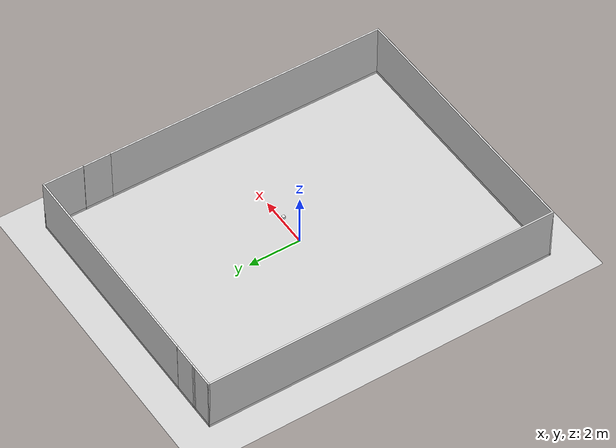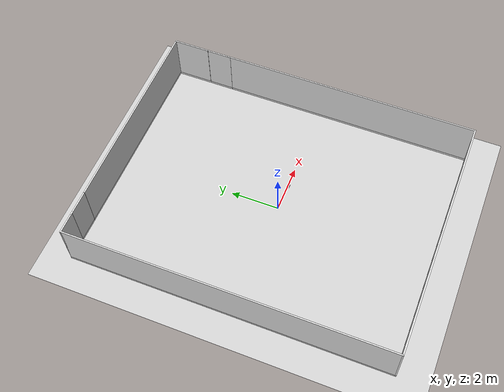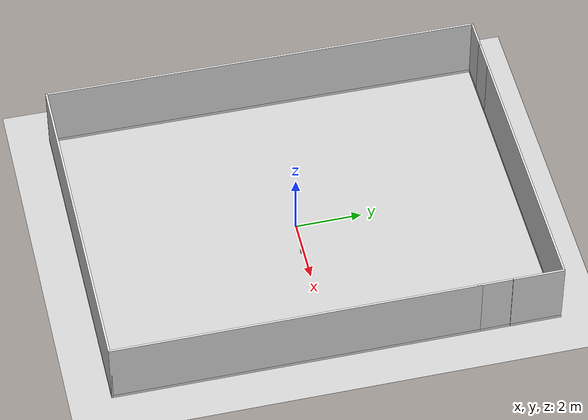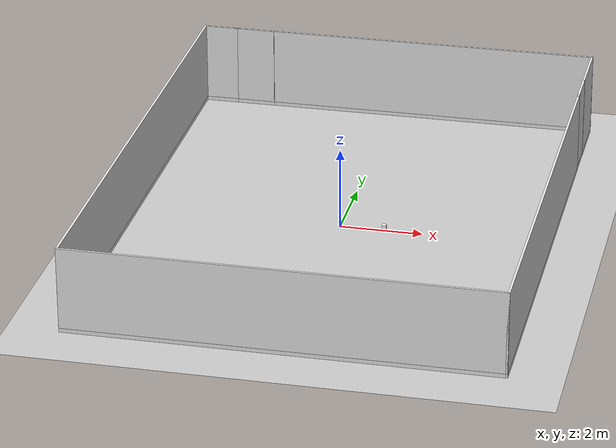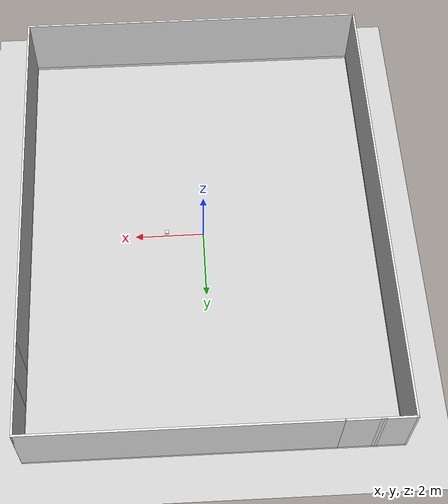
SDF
<sdf version="1.6">
 <world name="megaweb">
  <physics name="default_physics" default="0" type="ode">
   <max_step_size>0.001</max_step_size>
   <real_time_factor>1</real_time_factor>
   <real_time_update_rate>1000</real_time_update_rate>
  </physics>
  <scene><ambient>1 1 1 1</ambient><background>0.7 0.7 0.7 1</background><shadows>1</shadows></scene>
  <model name="ground_plane">
   <static>1</static>
   <link name="link">
    <collision name="collision">
     <geometry><plane><normal>0 0 1</normal><size>100 100</size></plane></geometry>
     <surface><friction><ode><mu>100</mu><mu2>50</mu2></ode></friction></surface>
    </collision>
    <visual name="visual">
     <cast_shadows>0</cast_shadows>
     <geometry><plane><normal>0 0 1</normal><size>100 100</size></plane></geometry>
     <material>
      <script><uri>file://media/materials/scripts/gazebo.material</uri><name>Gazebo/Grey</name></script>
     </material>
    </visual>
   </link>
  </model>
  <light name="floorlight1" type="spot">
   <pose>-3 -3 4 0 -0 0</pose>
   <diffuse>0.8 0.8 0.8 1</diffuse>
   <specular>0.2 0.2 0.2 1</specular>
   <attenuation>
    <range>10</range>
    <constant>0.9</constant>
    <linear>0.2</linear>
    <quadratic>0.001</quadratic>
   </attenuation>
   <spot><inner_angle>0.1</inner_angle><outer_angle>3.14</outer_angle><falloff>0.01</falloff></spot>
   <direction>0 0 -1</direction>
  </light>
  <light name="floorlight2" type="spot">
   <pose>-6 -3 4 0 -0 0</pose>
   <diffuse>0.8 0.8 0.8 1</diffuse>
   <specular>0.2 0.2 0.2 1</specular>
   <attenuation>
    <range>10</range>
    <constant>0.9</constant>
    <linear>0.2</linear>
    <quadratic>0.001</quadratic>
   </attenuation>
   <spot><inner_angle>0.1</inner_angle><outer_angle>3.14</outer_angle><falloff>0.01</falloff></spot>
   <direction>0 0 -1</direction>
  </light>
  <light name="floorlight3" type="spot">
   <pose>-3 -6 4 0 -0 0</pose>
   <diffuse>0.8 0.8 0.8 1</diffuse>
   <specular>0.2 0.2 0.2 1</specular>
   <attenuation>
    <range>10</range>
    <constant>0.9</constant>
    <linear>0.2</linear>
    <quadratic>0.001</quadratic>
   </attenuation>
   <spot><inner_angle>0.1</inner_angle><outer_angle>3.14</outer_angle><falloff>0.01</falloff></spot>
   <direction>0 0 -1</direction>
  </light>
  <light name="floorlight4" type="spot">
   <pose>-6 -6 4 0 -0 0</pose>
   <diffuse>0.8 0.8 0.8 1</diffuse>
   <specular>0.2 0.2 0.2 1</specular>
   <attenuation>
    <range>10</range>
    <constant>0.9</constant>
    <linear>0.2</linear>
    <quadratic>0.001</quadratic>
   </attenuation>
   <spot><inner_angle>0.1</inner_angle><outer_angle>3.14</outer_angle><falloff>0.01</falloff></spot>
   <direction>0 0 -1</direction>
  </light>
  <gravity>0 0 -9.8</gravity>
  <magnetic_field>6e-06 2.3e-05 -4.2e-05</magnetic_field>
  <atmosphere type="adiabatic"/>
  <spherical_coordinates>
   <surface_model>EARTH_WGS84</surface_model>
   <latitude_deg>0</latitude_deg>
   <longitude_deg>0</longitude_deg>
   <elevation>0</elevation>
   <heading_deg>0</heading_deg>
  </spherical_coordinates>
  <model name="full_outside_wall">
   <link name="link">
    <inertial>
     <mass>50</mass>
     <inertia><ixx>1</ixx><ixy>0</ixy><ixz>0</ixz><iyy>1</iyy><iyz>0</iyz><izz>1</izz></inertia>
    </inertial>
    <visual name="x00_13y00_bottom_frame">
     <pose>5.0375 -0.0275 0.05 0 -0 0</pose>
     <geometry><box><size>10.185 0.055 0.1</size></box></geometry>
     <material>
      <script><uri>model://base_materials/color/scripts</uri><name>hsr_color/white</name></script>
     </material>
    </visual>
    <collision name="x00_13y00_collision_bottom_frame">
     <pose>5.0375 -0.0275 0.05 0 -0 0</pose>
     <geometry><box><size>10.185 0.055 0.1</size></box></geometry>
    </collision>
    <visual name="wall_x00_13y00">
     <pose>5.0375 -0.0275 1.095 0 -0 0</pose>
     <geometry><box><size>10.185 0.055 1.99</size></box></geometry>
     <material>
      <script>
       <uri>model://base_materials/wall/scripts</uri>
       <uri>model://base_materials/wall/textures</uri>
       <name>wall/white_noise</name>
      </script>
     </material>
    </visual>
    <collision name="wall_x00_13y00">
     <pose>5.0375 -0.002 1.095 0 -0 0</pose>
     <geometry><box><size>10.08 0.055 1.99</size></box></geometry>
    </collision>
    <visual name="x00y00_15_bottom_frame">
     <pose>-0.0275 6.59 0.05 0 -0 0</pose>
     <geometry><box><size>0.055 13.29 0.1</size></box></geometry>
     <material>
      <script><uri>model://base_materials/color/scripts</uri><name>hsr_color/white</name></script>
     </material>
    </visual>
    <collision name="x00y00_15_collision_bottom_frame">
     <pose>-0.0275 6.59 0.05 0 -0 0</pose>
     <geometry><box><size>0.055 13.29 0.1</size></box></geometry>
    </collision>
    <visual name="wall_x00y00_15">
     <pose>-0.0275 6.59 1.095 0 -0 0</pose>
     <geometry><box><size>0.055 13.29 1.99</size></box></geometry>
     <material>
      <script>
       <uri>model://base_materials/wall/scripts</uri>
       <uri>model://base_materials/wall/textures</uri>
       <name>wall/white_noise</name>
      </script>
     </material>
    </visual>
    <collision name="wall_x00y00_x00y15">
     <pose>-0.002 6.59 1.095 0 -0 0</pose>
     <geometry><box><size>0.002 13.29 1.99</size></box></geometry>
    </collision>
    <visual name="x13y00_12_bottom_frame">
     <pose>10.1025 5.3725 0.05 0 -0 0</pose>
     <geometry><box><size>0.055 10.855 0.1</size></box></geometry>
     <material>
      <script><uri>model://base_materials/color/scripts</uri><name>hsr_color/white</name></script>
     </material>
    </visual>
    <collision name="x13y00_12_collision_bottom_frame">
     <pose>10.1025 5.3725 0.05 0 -0 0</pose>
     <geometry><box><size>0.055 10.855 0.1</size></box></geometry>
    </collision>
    <visual name="wall_x13y00_12">
     <pose>10.1025 5.3725 1.095 0 -0 0</pose>
     <geometry><box><size>0.055 10.855 1.99</size></box></geometry>
     <material>
      <script>
       <uri>model://base_materials/wall/scripts</uri>
       <uri>model://base_materials/wall/textures</uri>
       <name>wall/white_noise</name>
      </script>
     </material>
    </visual>
    <collision name="wall_x13y00_12">
     <pose>10.1025 5.3725 1.095 0 -0 0</pose>
     <geometry><box><size>0.055 10.855 1.99</size></box></geometry>
    </collision>
    <visual name="x13y14_16_bottom_frame">
     <pose>10.1025 12.4675 0.05 0 -0 0</pose>
     <geometry><box><size>0.055 1.535 0.1</size></box></geometry>
     <material>
      <script><uri>model://base_materials/color/scripts</uri><name>hsr_color/white</name></script>
     </material>
    </visual>
    <collision name="x13y14_16_collision_bottom_frame">
     <pose>10.1025 12.4675 0.05 0 -0 0</pose>
     <geometry><box><size>0.055 1.535 0.1</size></box></geometry>
    </collision>
    <visual name="wall_x13y14_x13y16">
     <pose>10.1025 12.4675 1.095 0 -0 0</pose>
     <geometry><box><size>0.055 1.535 1.99</size></box></geometry>
     <material>
      <script>
       <uri>model://base_materials/wall/scripts</uri>
       <uri>model://base_materials/wall/textures</uri>
       <name>wall/white_noise</name>
      </script>
     </material>
    </visual>
    <collision name="wall_x13y14_x13y16">
     <pose>10.1025 12.4675 1.095 0 -0 0</pose>
     <geometry><box><size>0.055 1.535 1.99</size></box></geometry>
    </collision>
    <visual name="x00_01y16_bottom_frame">
     <pose>0.4225 13.2075 0.05 0 -0 0</pose>
     <geometry><box><size>0.955 0.055 0.1</size></box></geometry>
     <material>
      <script><uri>model://base_materials/color/scripts</uri><name>hsr_color/white</name></script>
     </material>
    </visual>
    <collision name="x00_01y16_collision_bottom_frame">
     <pose>0.4225 13.2075 0.05 0 -0 0</pose>
     <geometry><box><size>0.955 0.055 0.1</size></box></geometry>
    </collision>
    <visual name="wall_x00_01y16">
     <pose>0.4225 13.2075 1.095 0 -0 0</pose>
     <geometry><box><size>0.955 0.055 1.99</size></box></geometry>
     <material>
      <script>
       <uri>model://base_materials/wall/scripts</uri>
       <uri>model://base_materials/wall/textures</uri>
       <name>wall/white_noise</name>
      </script>
     </material>
    </visual>
    <collision name="wall_x00_x01y16">
     <pose>0.4225 13.2075 1.095 0 -0 0</pose>
     <geometry><box><size>0.955 0.055 1.99</size></box></geometry>
    </collision>
    <visual name="x03_13y16_bottom_frame">
     <pose>5.965 13.2075 0.05 0 -0 0</pose>
     <geometry><box><size>8.33 0.05 0.1</size></box></geometry>
     <material>
      <script><uri>model://base_materials/color/scripts</uri><name>hsr_color/white</name></script>
     </material>
    </visual>
    <collision name="x03_13y16_collision_bottom_frame">
     <pose>5.965 13.2075 0.05 0 -0 0</pose>
     <geometry><box><size>8.33 0.05 0.1</size></box></geometry>
    </collision>
    <visual name="wall_x03_13y16">
     <pose>5.965 13.2075 1.095 0 -0 0</pose>
     <geometry><box><size>8.33 0.055 1.99</size></box></geometry>
     <material>
      <script>
       <uri>model://base_materials/wall/scripts</uri>
       <uri>model://base_materials/wall/textures</uri>
       <name>wall/white_noise</name>
      </script>
     </material>
    </visual>
    <collision name="wall_x03_13y16">
     <pose>5.965 13.2075 1.095 0 -0 0</pose>
     <geometry><box><size>8.33 0.055 1.99</size></box></geometry>
    </collision>
    <velocity_decay><linear>0</linear><angular>0</angular></velocity_decay>
   </link>
   <static>1</static>
   <pose>-5 -6.5 0 0 -0 0</pose>
  </model>
  <model name="full_wall_55_900_2090">
   <link name="link">
    <inertial>
     <mass>50</mass>
     <inertia><ixx>1</ixx><ixy>0</ixy><ixz>0</ixz><iyy>1</iyy><iyz>0</iyz><izz>1</izz></inertia>
    </inertial>
    <visual name="bottom_frame">
     <pose>0 0 0.05 0 -0 0</pose>
     <geometry><box><size>0.055 1.04 0.1</size></box></geometry>
     <material>
      <script><uri>model://base_materials/color/scripts</uri><name>hsr_color/white</name></script>
     </material>
    </visual>
    <collision name="collision_bottom_frame">
     <pose>0 0 0.05 0 -0 0</pose>
     <geometry><box><size>0.055 1.04 0.1</size></box></geometry>
    </collision>
    <visual name="wall">
     <pose>0 0 1.095 0 -0 0</pose>
     <geometry><box><size>0.055 1.04 1.99</size></box></geometry>
     <material>
      <script>
       <uri>model://base_materials/wall/scripts</uri>
       <uri>model://base_materials/wall/textures</uri>
       <name>wall/white_noise</name>
      </script>
     </material>
    </visual>
    <collision name="collision_wall">
     <pose>0 0 1.095 0 -0 0</pose>
     <geometry><box><size>0.055 1.04 1.99</size></box></geometry>
    </collision>
    <velocity_decay><linear>0</linear><angular>0</angular></velocity_decay>
   </link>
   <static>1</static>
   <pose>5.1 4.67156 0 0 -0 0</pose>
  </model>
  <model name="full_wall_55_900_2090_0">
   <link name="link">
    <inertial>
     <mass>50</mass>
     <inertia><ixx>1</ixx><ixy>0</ixy><ixz>0</ixz><iyy>1</iyy><iyz>0</iyz><izz>1</izz></inertia>
    </inertial>
    <visual name="bottom_frame">
     <pose>0 0 0.05 0 -0 0</pose>
     <geometry><box><size>0.055 1.04 0.1</size></box></geometry>
     <material>
      <script><uri>model://base_materials/color/scripts</uri><name>hsr_color/white</name></script>
     </material>
    </visual>
    <collision name="collision_bottom_frame">
     <pose>0 0 0.05 0 -0 0</pose>
     <geometry><box><size>0.055 1.04 0.1</size></box></geometry>
    </collision>
    <visual name="wall">
     <pose>0 0 1.095 0 -0 0</pose>
     <geometry><box><size>0.055 1.04 1.99</size></box></geometry>
     <material>
      <script>
       <uri>model://base_materials/wall/scripts</uri>
       <uri>model://base_materials/wall/textures</uri>
       <name>wall/white_noise</name>
      </script>
     </material>
    </visual>
    <collision name="collision_wall">
     <pose>0 0 1.095 0 -0 0</pose>
     <geometry><box><size>0.055 1.04 1.99</size></box></geometry>
    </collision>
    <velocity_decay><linear>0</linear><angular>0</angular></velocity_decay>
   </link>
   <static>1</static>
   <pose>-3.72484 6.70714 0 0 -0 1.57</pose>
  </model>
  <model name="my_mesh">
   <link name="body">
    <inertial>
     <mass>1</mass>
     <inertia><ixx>1</ixx><ixy>0</ixy><ixz>0</ixz><iyy>1</iyy><iyz>0</iyz><izz>1</izz></inertia>
    </inertial>
    <visual name="visual">
     <geometry><box><size>0.105 0.105 0.105</size></box></geometry>
     <material>
      <script>
       <uri>model://marker/0008/scripts</uri>
       <uri>model://marker/0008/textures</uri>
       <name>Marker/0008</name>
      </script>
      <ambient>1 1 1 1</ambient>
      <diffuse>1 1 1 1</diffuse>
      <specular>0 0 0 1</specular>
      <emissive>0 0 0 1</emissive>
      <shader type="vertex"><normal_map>__default__</normal_map></shader>
     </material>
    </visual>
   </link>
   <static>1</static>
   <pose>1.08261 -0.050018 0.127344 0 -0 0</pose>
  </model>
 </world>
</sdf>
